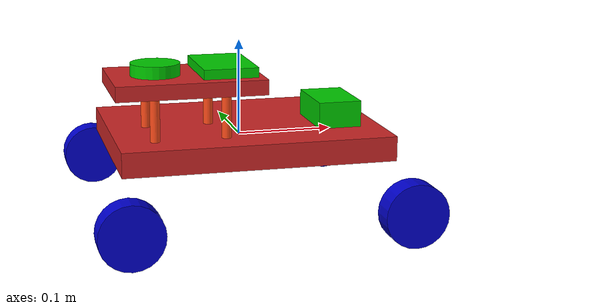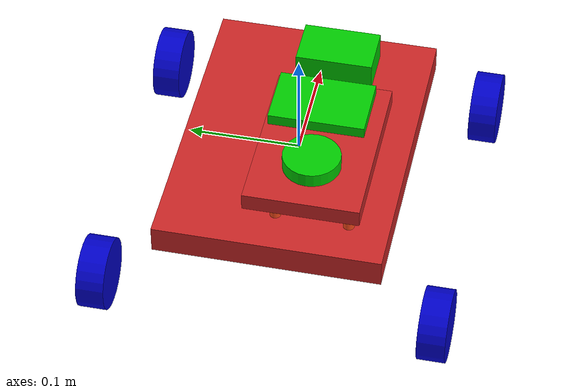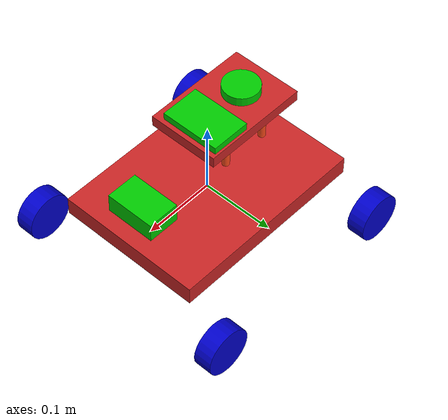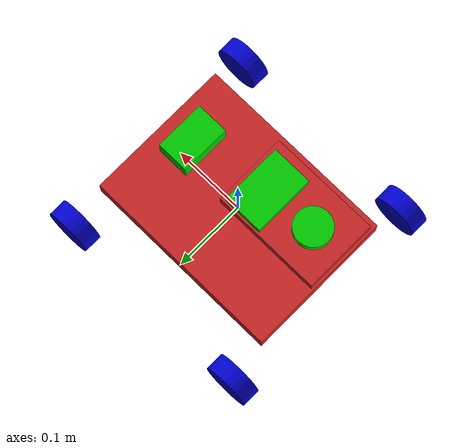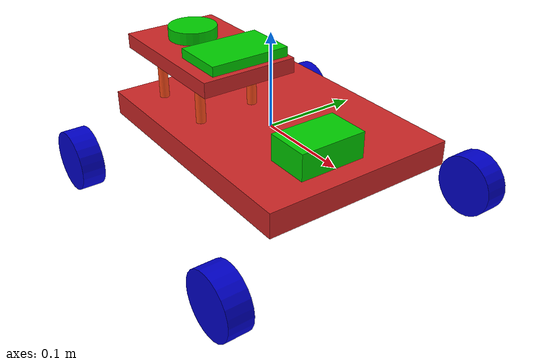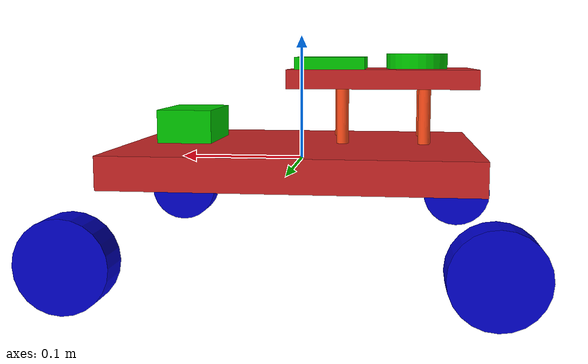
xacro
<?xml version="1.0"?>
<robot xmlns:xacro="http://www.ros.org/wiki/xacro" name="mobile_robot">

<!-- Base Link -->
<link name="base_link">
</link>

<xacro:property name="height" value="0.2794" />
<xacro:property name="width" value="0.2032" />
<xacro:property name="depth" value="0.0254" />

<!--Chassis-->
<link name="chassis">
  <visual>
   <origin xyz="0 0 0" rpy="0 0 0"/>​
    <geometry>
      <box size="${height} ${width} ${depth}"/>
    </geometry>
  </visual>
  <collision>
    <geometry>
      <box size="${height} ${width} ${depth}"/>
    </geometry>
  </collision>
  <inertial>
    <mass value="1.0"/> <!-- [kg] -->
    <inertia ixx="0.014167" ixy="0.0" ixz="0.0" iyy="0.026667" iyz="0.0" izz="0.014167"/>
  </inertial>
</link>

<gazebo reference="chassis">
  <material>Gazebo/Red</material>
</gazebo>

<joint name="chassis_joint" type="fixed">
  <parent link="base_link"/>
  <child link="chassis"/>
  <origin xyz="0 0 0"/>
</joint>

<material name="blue">
    <color rgba="0 0 0.8 1"/>
</material>

<xacro:property name="wheel_height" value="0.025" />
<xacro:property name="wheel_radius" value="0.0325" />

<!-- Wheel macro-->
<xacro:macro name="wheel" params="name reflect_x reflect_y reflect_r reflect_axis">

  <!-- Wheel link -->
	<link name="${name}_wheel">
    <visual>
      <geometry>
        <cylinder length="${wheel_height}" radius="${wheel_radius}"/>
      </geometry>
      <material name="blue"/>
    </visual>
    <collision>
      <geometry>
        <cylinder length="${wheel_height}" radius="${wheel_radius}"/>
      </geometry>
    </collision>
    <inertial>
      <mass value="0.1"/>  <!-- [kg] -->
      <inertia ixx="0.00031" ixy="0.0" ixz="0.0" iyy="0.00031" iyz="0.0" izz="0.00054"/>
    </inertial>
  </link>

  <!-- Wheel joint -->
  <joint name="${name}_wheel_joint" type="continuous">
    <parent link="chassis"/>
    <child link="${name}_wheel"/>
    <origin xyz="${reflect_x*height/2} ${reflect_y*(width/2+0.05)} -0.0524" rpy="${reflect_r*1.5707} 0 0"/>
    <axis xyz="0 0 ${reflect_axis}"/>
  </joint>

  <!-- Adding transmission to wheels -->
  <transmission name="${name}_wheel_trans">
    <type>transmission_interface/SimpleTransmission</type>
    <actuator name="${name}_wheel_motor">
      <mechanicalReduction>1</mechanicalReduction>
    </actuator>
    <joint name="${name}_wheel_joint">
      <hardwareInterface>hardware_interface/VelocityJointInterface</hardwareInterface>
    </joint>
  </transmission>

  <gazebo reference="${name}_wheel">
    <material>Gazebo/Blue</material>
  </gazebo>

</xacro:macro>

<!-- Wheels definition-->
<xacro:wheel name="front_right" reflect_x="1" reflect_y="-1" reflect_r="1" reflect_axis="-1"/>
<xacro:wheel name="front_left" reflect_x="1" reflect_y="1" reflect_r="-1" reflect_axis="1"/>
<xacro:wheel name="rear_right" reflect_x="-1" reflect_y="-1" reflect_r="1" reflect_axis="-1"/>
<xacro:wheel name="rear_left" reflect_x="-1" reflect_y="1" reflect_r="-1" reflect_axis="1"/>

<!-- nano box -->
<material name="green">
  <color rgba="0 0.8 0 1"/>
</material>

  <link name="nano">
    <visual>
      <geometry>
        <box size="0.045 0.07 0.029"/>
      </geometry>
      <material name="green"/>
    </visual>
  </link>

  <joint name="nano_joint" type="fixed">
    <parent link="chassis"/>
    <child link="nano"/>
    <origin xyz="0.0951979  -0.0170979 0.0254" rpy="0 0 0"/>
  </joint>

<gazebo reference="nano">
  <material>Gazebo/Green</material>
</gazebo>

<!--pillar box-->

 <material name="orange">
    <color rgba="1 0.3 0.1 1"/>
  </material>
<!--pillar1 box-->
 <link name="pillar1">
    <visual>
      <geometry>
        <cylinder radius="0.005" length="0.06" />
      </geometry>
      <material name="orange"/>
    </visual>
  </link>

  <joint name="pillar1_joint" type="fixed">
    <parent link="chassis"/>
    <child link="pillar1"/>
    <origin xyz="-0.100881 -0.0655712 0.0354" rpy="0 0 0"/>
  </joint>

  <gazebo reference="pillar1">
  <material>Gazebo/Orange</material>
</gazebo>

   <!--pillar2 box-->
  <link name="pillar2">
    <visual>
      <geometry>
        <cylinder radius="0.005" length="0.06" />
      </geometry>
      <material name="orange"/>
    </visual>
  </link>

  <joint name="pillar2_joint" type="fixed">
    <parent link="chassis"/>
    <child link="pillar2"/>
    <origin xyz="-0.0282339 -0.0645076 0.0354" rpy="0 0 0"/>
  </joint>

  <gazebo reference="pillar2">
  <material>Gazebo/Orange</material>
</gazebo>

    <!--pillar3 box-->
  <link name="pillar3">
    <visual>
      <geometry>
        <cylinder radius="0.005" length="0.06" />
      </geometry>
      <material name="orange"/>
    </visual>
  </link>

  <joint name="pillar3_joint" type="fixed">
    <parent link="chassis"/>
    <child link="pillar3"/>
    <origin xyz="-0.0997477 -0.0001920 0.0354" rpy="0 0 0"/>
  </joint>

  <gazebo reference="pillar3">
  <material>Gazebo/Orange</material>
</gazebo>

    <!--pillar4 box-->
  <link name="pillar4">
    <visual>
      <geometry>
        <cylinder radius="0.005" length="0.06" />
      </geometry>
      <material name="orange"/>
    </visual>
  </link>

  <joint name="pillar4_joint" type="fixed">
    <parent link="chassis"/>
    <child link="pillar4"/>
    <origin xyz="-0.0336015 -0.000379 0.0354" rpy="0 0 0"/>
  </joint>

  <gazebo reference="pillar4">
  <material>Gazebo/Orange</material>
</gazebo>

      <!--expansion box-->
  <link name="expansion">
    <visual>
      <geometry>
        <box size="0.1524 0.1016 0.0154" />
      </geometry>
      <material name="red"/>
    </visual>
  </link>

  <joint name="expansion_joint" type="fixed">
    <parent link="chassis"/>
    <child link="expansion"/>
    <origin xyz="-0.0651911 -0.0309193 0.0654" rpy="0 0 0"/>
  </joint>

   <gazebo reference="pillar4">
  <material>Gazebo/Red</material>
</gazebo>

     <!--ros box-->
  <link name="ros">
    <visual>
      <geometry>
        <box size="0.055999888 0.085000084  0.0154" />
      </geometry>
      <material name="green"/>
    </visual>
  </link>

  <joint name="ros_joint" type="fixed">
    <parent link="chassis"/>
    <child link="ros"/>
    <origin xyz="-0.0236561 -0.0258188 0.0754" rpy="0 0 0"/>
  </joint>

     <gazebo reference="pillar4">
  <material>Gazebo/Green</material>
</gazebo>

     <!--lidar box-->
  <link name="lidar">
    <visual>
      <geometry>
        <cylinder radius="0.0254" length="0.0208" />
      </geometry>
      <material name="green"/>
    </visual>
  </link>

  <joint name="lidar_joint" type="fixed">
    <parent link="chassis"/>
    <child link="lidar"/>
    <origin xyz="-0.0942216 -0.0311069 0.0754" rpy="0 0 0"/>
  </joint>

 <gazebo reference="pillar4">
  <material>Gazebo/Green</material>
</gazebo>

<!-- Link Gazebo and ROS -->
<gazebo>
  <plugin name="gazebo_ros_control" filename="libgazebo_ros_control.so">
    <robotNamespace>/</robotNamespace>
  </plugin>
</gazebo>

</robot>
